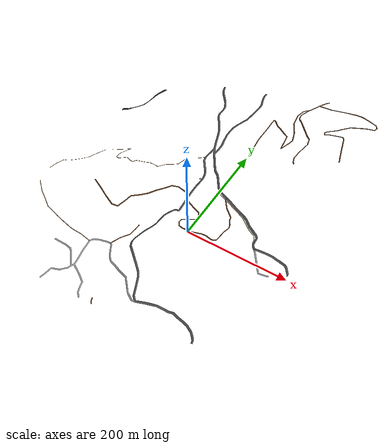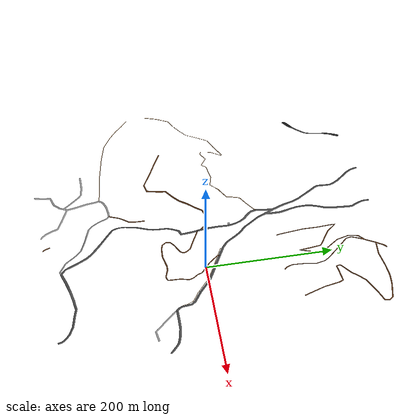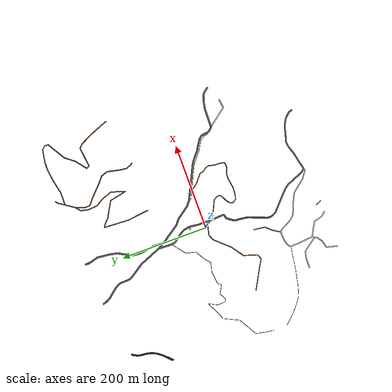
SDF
<sdf version="1.10">
 <world name="alishan_shizhuo">
  <gravity>0 0 -9.81</gravity>
  <physics name="1ms" type="ignored">
   <max_step_size>0.001</max_step_size>
   <real_time_factor>1.0</real_time_factor>
  </physics>
  <plugin filename="gz-sim-physics-system" name="gz::sim::systems::Physics"/>
  <plugin filename="gz-sim-user-commands-system" name="gz::sim::systems::UserCommands"/>
  <plugin filename="gz-sim-scene-broadcaster-system" name="gz::sim::systems::SceneBroadcaster"/>
  <scene>
   <ambient>0.55 0.55 0.55 1</ambient>
   <background>0.70 0.80 0.90 1</background>
   <shadows>true</shadows>
  </scene>
  <light type="directional" name="sun">
   <pose>0 0 500 0 0 0</pose>
   <diffuse>0.8 0.8 0.8 1</diffuse>
   <specular>0.2 0.2 0.2 1</specular>
   <direction>-0.5 -0.5 -1</direction>
  </light>
  <include><uri>model://alishan_shizhuo_roads</uri></include>
 </world>
</sdf>

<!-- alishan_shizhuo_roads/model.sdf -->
<sdf version="1.10">
  <model name="alishan_shizhuo_roads">
    <static>true</static>
    <link name="roads_visual_link">
      <visual name="secondary">
        <cast_shadows>false</cast_shadows>
        <geometry>
          <mesh>
            <uri>model://alishan_shizhuo_roads/meshes/alishan_shizhuo_roads_secondary.obj</uri>
          </mesh>
        </geometry>
        <material>
          <ambient>0.08 0.08 0.08 1</ambient>
          <diffuse>0.08 0.08 0.08 1</diffuse>
          <specular>0 0 0 1</specular>
        </material>
      </visual>
      <visual name="unclassified">
        <cast_shadows>false</cast_shadows>
        <geometry>
          <mesh>
            <uri>model://alishan_shizhuo_roads/meshes/alishan_shizhuo_roads_unclassified.obj</uri>
          </mesh>
        </geometry>
        <material>
          <ambient>0.28 0.28 0.28 1</ambient>
          <diffuse>0.28 0.28 0.28 1</diffuse>
          <specular>0 0 0 1</specular>
        </material>
      </visual>
      <visual name="service">
        <cast_shadows>false</cast_shadows>
        <geometry>
          <mesh>
            <uri>model://alishan_shizhuo_roads/meshes/alishan_shizhuo_roads_service.obj</uri>
          </mesh>
        </geometry>
        <material>
          <ambient>0.58 0.58 0.58 1</ambient>
          <diffuse>0.58 0.58 0.58 1</diffuse>
          <specular>0 0 0 1</specular>
        </material>
      </visual>
      <visual name="track">
        <cast_shadows>false</cast_shadows>
        <geometry>
          <mesh>
            <uri>model://alishan_shizhuo_roads/meshes/alishan_shizhuo_roads_track.obj</uri>
          </mesh>
        </geometry>
        <material>
          <ambient>0.34 0.18 0.06 1</ambient>
          <diffuse>0.34 0.18 0.06 1</diffuse>
          <specular>0 0 0 1</specular>
        </material>
      </visual>
      <visual name="path">
        <cast_shadows>false</cast_shadows>
        <geometry>
          <mesh>
            <uri>model://alishan_shizhuo_roads/meshes/alishan_shizhuo_roads_path.obj</uri>
          </mesh>
        </geometry>
        <material>
          <ambient>0.62 0.42 0.20 1</ambient>
          <diffuse>0.62 0.42 0.20 1</diffuse>
          <specular>0 0 0 1</specular>
        </material>
      </visual>
      <visual name="footway">
        <cast_shadows>false</cast_shadows>
        <geometry>
          <mesh>
            <uri>model://alishan_shizhuo_roads/meshes/alishan_shizhuo_roads_footway.obj</uri>
          </mesh>
        </geometry>
        <material>
          <ambient>0.72 0.54 0.30 1</ambient>
          <diffuse>0.72 0.54 0.30 1</diffuse>
          <specular>0 0 0 1</specular>
        </material>
      </visual>
    </link>
  </model>
</sdf>
